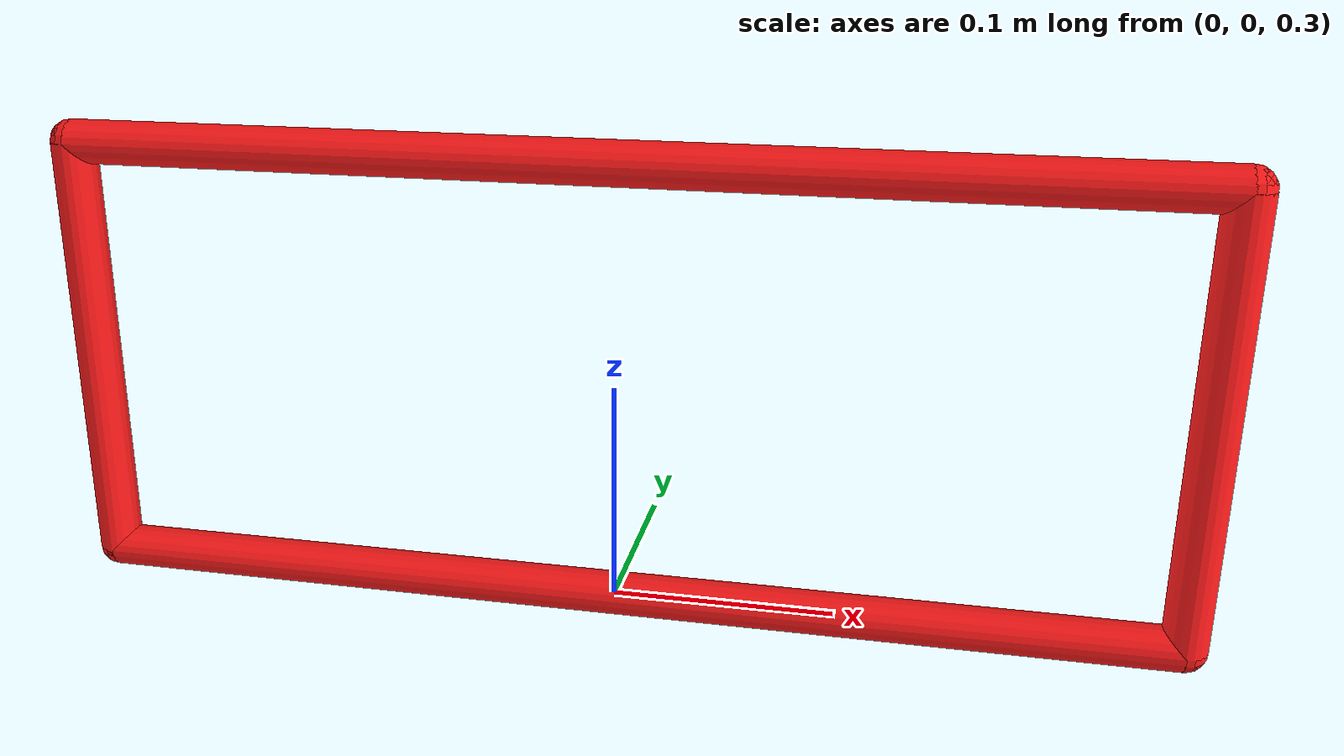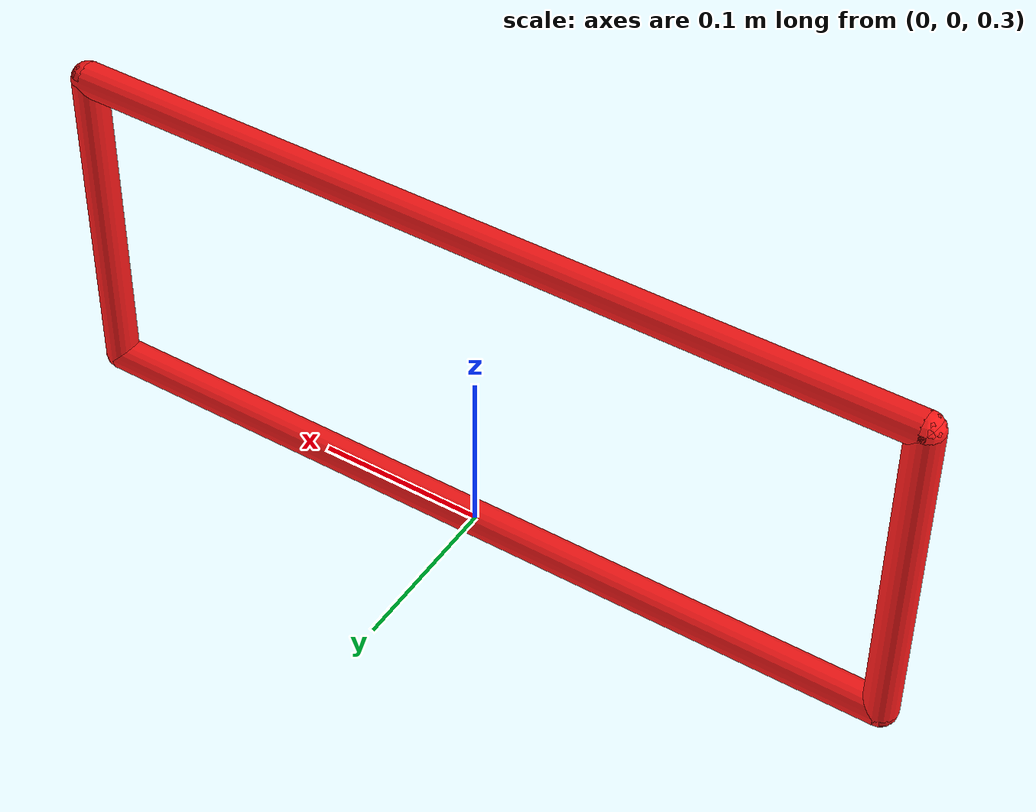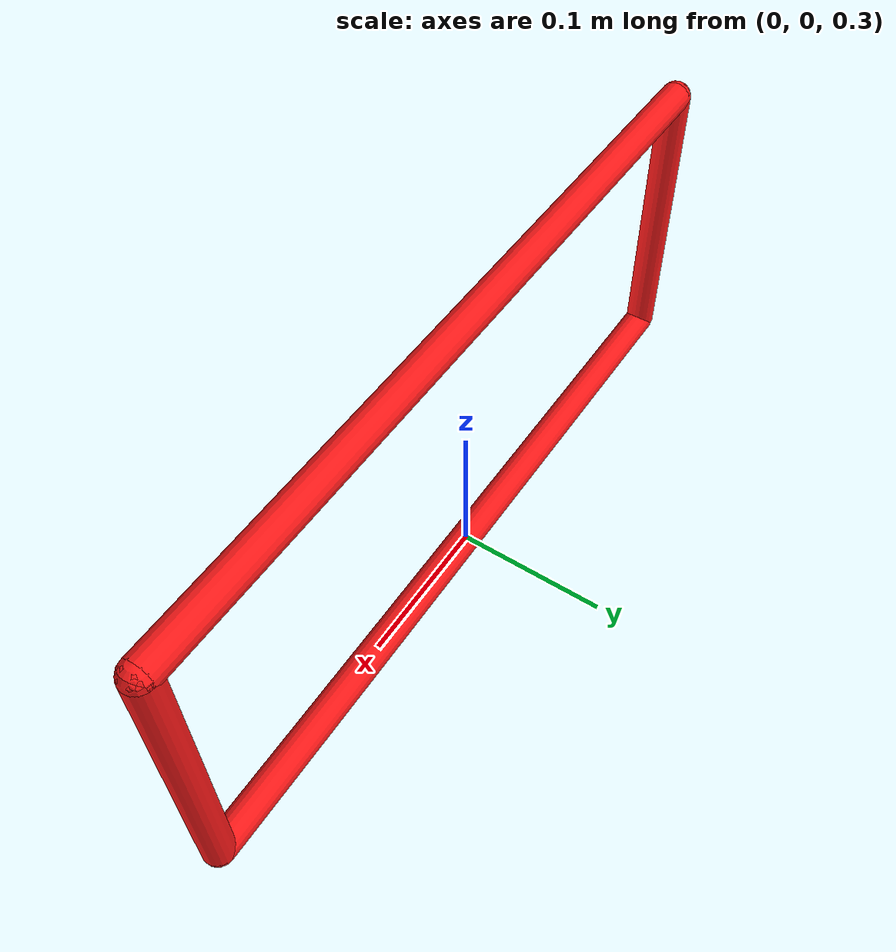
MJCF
<mujoco model="pantograph">

  <compiler eulerseq="xyz" angle="radian" meshdir="assets" texturedir="assets"/>

  <option timestep="0.001"/>

  <default class="pantograph">
      <equality solimp="0.005 1"/>
  </default>

  <contact>
  	<exclude body1="Link0" body2="Link1" />
  	<exclude body1="Link0" body2="Link2" />
  	<exclude body1="Link2" body2="Link3" />
  	<exclude body1="Link1" body2="Link3" />
  </contact>

  <worldbody>

    <body name="Link0" pos="0 0 0.5" euler="0 0 0">

        <inertial pos="0 0 0" mass="1"   />
        <geom type="capsule" size = "0.01" fromto = "-0.25 0 0 0.25 0 0" rgba="1 0.1 0.1 1"/>
        <body name="Link1" pos ="-0.25 0 0">
            <geom type="capsule" size = "0.01" fromto = "0 0 0 0 0 -0.2" rgba="1 0.1 0.1 1"/>
            <inertial pos="0.03 0 -0.02" mass="1"   diaginertia = "1e-3 1e-3 1e-3"/>
            <joint name="joint1" pos = "0 0 0" axis="0 1 0"/>
        </body>

        <body name="Link2" pos ="0.25 0 0">
            <geom  type="capsule" size = "0.01" fromto = "0 0 0 0 0 -0.2" rgba="1 0.1 0.1 1"/>
            <inertial pos="0 0 -0.02" mass="1"   diaginertia = "1e-3 1e-3 1e-3"/>
            <joint name="joint2" pos = "0 0 0" axis="0 1 0"/>

            <body name="Link3" pos ="0 0 -0.2" euler="0 0 0">
                <geom type="capsule" size = "0.01" fromto = "0 0 0 -0.5 0 0" rgba="1 0.1 0.1 1"/>
                <inertial pos="-0.25 0 0" mass="1"  diaginertia = "1e-3 1e-3 1e-3"/>
                <joint name="joint3" pos = "0 0 0" axis="0 1 0"/>
            </body>

        </body>

    </body>

  </worldbody>

  <equality>
      <connect class="pantograph" name="Loop" body1="Link1" body2="Link3" anchor="0 0 -0.2"/>
  </equality>

  <actuator>
  	<!--motor name="joint2_torque" joint="joint2" ctrllimited="true" ctrlrange="-10. 10."/-->
  	<position name="joint2_position" joint="joint2" kp="100"/>
  </actuator>

</mujoco>
